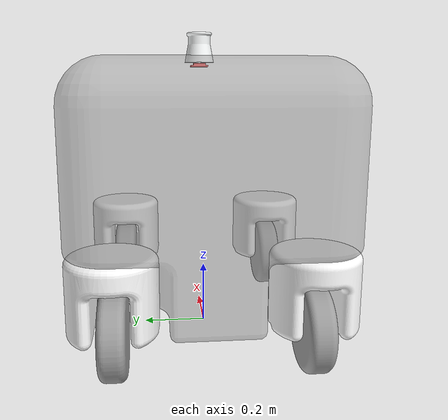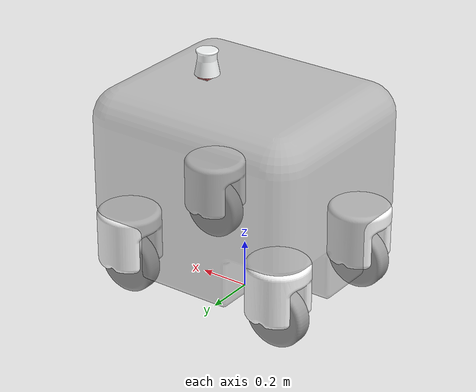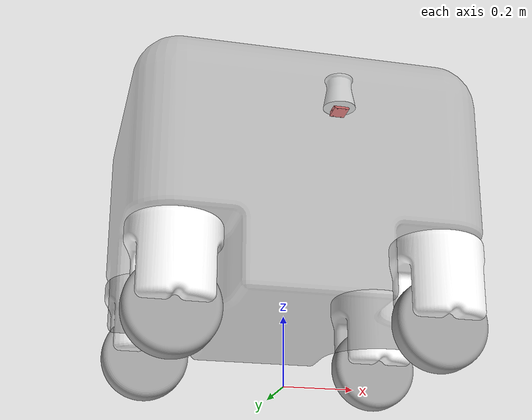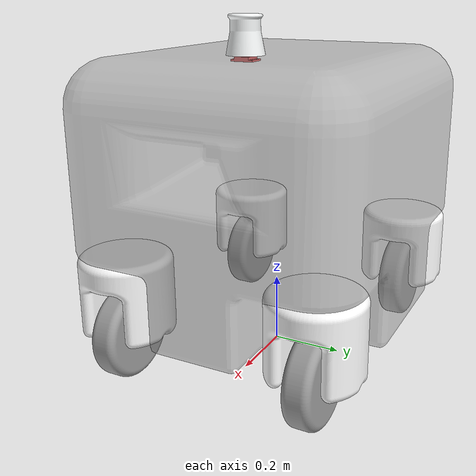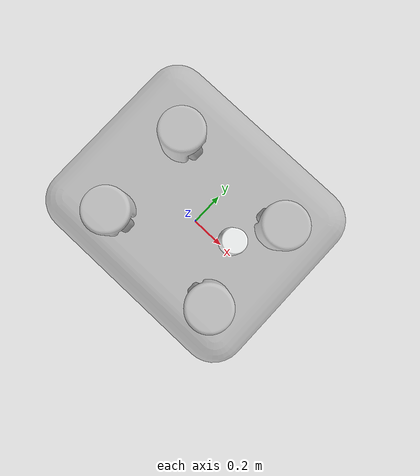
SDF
<sdf version="1.11">
  <model name="schoolbus">
    <link name="base_link">
      <inertial>
        <pose>-0.0030991999999999999 -3.8153999999999999e-08 0.53654000000000002 0 0 0</pose>
        <mass>486.55000000000001</mass>
        <inertia>
          <ixx>43.054000000000002</ixx>
          <ixy>8.2786999999999992e-06</ixy>
          <ixz>0.15619</ixz>
          <iyy>51.598999999999997</iyy>
          <iyz>1.8423999999999999e-06</iyz>
          <izz>57.113999999999997</izz>
        </inertia>
      </inertial>
      <collision name="base_link_collision">
        <pose>0 0 0 0 0 0</pose>
        <geometry>
          <mesh>
            <scale>1 1 1</scale>
            <uri>package://schoolbus_description/meshes/visual/base_link.STL</uri>
          </mesh>
        </geometry>
      </collision>
      <visual name="base_link_visual">
        <pose>0 0 0 0 0 0</pose>
        <geometry>
          <mesh>
            <scale>1 1 1</scale>
            <uri>package://schoolbus_description/meshes/visual/base_link.STL</uri>
          </mesh>
        </geometry>
        <material>
          <diffuse>0.627449989 0.627449989 0.627449989 0.5</diffuse>
          <ambient>0.627449989 0.627449989 0.627449989 0.5</ambient>
        </material>
      </visual>
    </link>
    <joint name="3d_lidar" type="fixed">
      <pose relative_to="base_link">0.17780000000000001 0 0.94942000000000004 0 0 0</pose>
      <parent>base_link</parent>
      <child>3d_lidar_link</child>
      <axis>
        <xyz>0 0 1</xyz>
        <limit>
          <lower>-inf</lower>
          <upper>inf</upper>
        </limit>
        <dynamics>
          <spring_reference>0</spring_reference>
          <spring_stiffness>0</spring_stiffness>
        </dynamics>
      </axis>
    </joint>
    <link name="3d_lidar_link">
      <pose relative_to="3d_lidar">0 0 0 0 0 0</pose>
      <inertial>
        <pose>0 3.9269999999999998e-35 -0.026988000000000002 0 0 0</pose>
        <mass>0.57150000000000001</mass>
        <inertia>
          <ixx>0.00077567000000000001</ixx>
          <ixy>-1.535e-36</ixy>
          <ixz>4.9776000000000003e-20</ixz>
          <iyy>0.00077567000000000001</iyy>
          <iyz>-9.8455999999999993e-37</iyz>
          <izz>0.00053483999999999997</izz>
        </inertia>
      </inertial>
      <collision name="3d_lidar_link_collision">
        <pose>0 0 0 0 0 0</pose>
        <geometry>
          <mesh>
            <scale>1 1 1</scale>
            <uri>package://schoolbus_description/meshes/visual/3d_lidar_link.STL</uri>
          </mesh>
        </geometry>
      </collision>
      <visual name="3d_lidar_link_visual">
        <pose>0 0 0 0 0 0</pose>
        <geometry>
          <mesh>
            <scale>1 1 1</scale>
            <uri>package://schoolbus_description/meshes/visual/3d_lidar_link.STL</uri>
          </mesh>
        </geometry>
        <material>
          <diffuse>0.990199983 1 1 1</diffuse>
          <ambient>0.990199983 1 1 1</ambient>
        </material>
      </visual>
    </link>
    <joint name="bl_steering" type="revolute">
      <pose relative_to="base_link">-0.35560000000000003 0.27939999999999998 0.35560000000000003 0 0 0</pose>
      <parent>base_link</parent>
      <child>bl_steering_link</child>
      <axis>
        <xyz>0 0 -1</xyz>
        <limit>
          <lower>-1.5708</lower>
          <upper>1.5708</upper>
          <effort>6</effort>
          <velocity>1.5</velocity>
        </limit>
        <dynamics>
          <damping>0.10000000000000001</damping>
          <friction>1</friction>
          <spring_reference>0</spring_reference>
          <spring_stiffness>0</spring_stiffness>
        </dynamics>
      </axis>
    </joint>
    <link name="bl_steering_link">
      <pose relative_to="bl_steering">0 0 0 0 0 0</pose>
      <inertial>
        <pose>-7.9133999999999999e-08 -1.3958999999999999e-07 -0.092578999999999995 0 0 0</pose>
        <mass>7.3875999999999999</mass>
        <inertia>
          <ixx>0.072414999999999993</ixx>
          <ixy>-9.3088000000000003e-07</ixy>
          <ixz>-2.1935999999999999e-08</ixz>
          <iyy>0.055257000000000001</iyy>
          <iyz>-6.4072999999999994e-08</iyz>
          <izz>0.065565999999999999</izz>
        </inertia>
      </inertial>
      <collision name="bl_steering_link_collision">
        <pose>0 0 0 0 0 0</pose>
        <geometry>
          <mesh>
            <scale>1 1 1</scale>
            <uri>package://schoolbus_description/meshes/visual/bl_steering_link.STL</uri>
          </mesh>
        </geometry>
      </collision>
      <visual name="bl_steering_link_visual">
        <pose>0 0 0 0 0 0</pose>
        <geometry>
          <mesh>
            <scale>1 1 1</scale>
            <uri>package://schoolbus_description/meshes/visual/bl_steering_link.STL</uri>
          </mesh>
        </geometry>
        <material>
          <diffuse>1 1 1 1</diffuse>
          <ambient>1 1 1 1</ambient>
        </material>
      </visual>
    </link>
    <joint name="bl_wheel" type="revolute">
      <pose relative_to="bl_steering_link">0 0 -0.2286 -1.5708 0 0</pose>
      <parent>bl_steering_link</parent>
      <child>bl_wheel_link</child>
      <axis>
        <xyz>0 0 1</xyz>
        <limit>
          <effort>14</effort>
          <velocity>35</velocity>
          <lower>-inf</lower>
          <upper>inf</upper>
        </limit>
        <dynamics>
          <damping>0.10000000000000001</damping>
          <friction>1</friction>
          <spring_reference>0</spring_reference>
          <spring_stiffness>0</spring_stiffness>
        </dynamics>
      </axis>
    </joint>
    <link name="bl_wheel_link">
      <pose relative_to="bl_wheel">0 0 0 0 0 0</pose>
      <inertial>
        <pose>0 0 0 0 0 0</pose>
        <mass>3.7288999999999999</mass>
        <inertia>
          <ixx>0.016291</ixx>
          <ixy>7.1943000000000005e-35</ixy>
          <ixz>8.2897e-35</ixz>
          <iyy>0.016291</iyy>
          <iyz>-1.6705e-49</iyz>
          <izz>0.029148</izz>
        </inertia>
      </inertial>
      <collision name="bl_wheel_link_collision">
        <pose>0 0 0 0 0 0</pose>
        <geometry>
          <mesh>
            <scale>1 1 1</scale>
            <uri>package://schoolbus_description/meshes/visual/bl_wheel_link.STL</uri>
          </mesh>
        </geometry>
      </collision>
      <visual name="bl_wheel_link_visual">
        <pose>0 0 0 0 0 0</pose>
        <geometry>
          <mesh>
            <scale>1 1 1</scale>
            <uri>package://schoolbus_description/meshes/visual/bl_wheel_link.STL</uri>
          </mesh>
        </geometry>
        <material>
          <diffuse>0.627449989 0.627449989 0.627449989 1</diffuse>
          <ambient>0.627449989 0.627449989 0.627449989 1</ambient>
        </material>
      </visual>
    </link>
    <joint name="br_steering" type="revolute">
      <pose relative_to="base_link">-0.35560000000000003 -0.27939999999999998 0.35560000000000003 0 0 0</pose>
      <parent>base_link</parent>
      <child>br_steering_link</child>
      <axis>
        <xyz>0 0 -1</xyz>
        <limit>
          <lower>-1.5708</lower>
          <upper>1.5708</upper>
          <effort>6</effort>
          <velocity>1.5</velocity>
        </limit>
        <dynamics>
          <damping>0.10000000000000001</damping>
          <friction>1</friction>
          <spring_reference>0</spring_reference>
          <spring_stiffness>0</spring_stiffness>
        </dynamics>
      </axis>
    </joint>
    <link name="br_steering_link">
      <pose relative_to="br_steering">0 0 0 0 0 0</pose>
      <inertial>
        <pose>-7.9133999999999999e-08 -1.3958999999999999e-07 -0.092578999999999995 0 0 0</pose>
        <mass>7.3875999999999999</mass>
        <inertia>
          <ixx>0.072414999999999993</ixx>
          <ixy>-9.3088000000000003e-07</ixy>
          <ixz>-2.1935999999999999e-08</ixz>
          <iyy>0.055257000000000001</iyy>
          <iyz>-6.4072999999999994e-08</iyz>
          <izz>0.065565999999999999</izz>
        </inertia>
      </inertial>
      <collision name="br_steering_link_collision">
        <pose>0 0 0 0 0 0</pose>
        <geometry>
          <mesh>
            <scale>1 1 1</scale>
            <uri>package://schoolbus_description/meshes/visual/br_steering_link.STL</uri>
          </mesh>
        </geometry>
      </collision>
      <visual name="br_steering_link_visual">
        <pose>0 0 0 0 0 0</pose>
        <geometry>
          <mesh>
            <scale>1 1 1</scale>
            <uri>package://schoolbus_description/meshes/visual/br_steering_link.STL</uri>
          </mesh>
        </geometry>
        <material>
          <diffuse>1 1 1 1</diffuse>
          <ambient>1 1 1 1</ambient>
        </material>
      </visual>
    </link>
    <joint name="br_wheel" type="revolute">
      <pose relative_to="br_steering_link">0 0 -0.2286 -1.5708 0 0</pose>
      <parent>br_steering_link</parent>
      <child>br_wheel_link</child>
      <axis>
        <xyz>0 0 1</xyz>
        <limit>
          <effort>14</effort>
          <velocity>35</velocity>
          <lower>-inf</lower>
          <upper>inf</upper>
        </limit>
        <dynamics>
          <damping>0.10000000000000001</damping>
          <friction>1</friction>
          <spring_reference>0</spring_reference>
          <spring_stiffness>0</spring_stiffness>
        </dynamics>
      </axis>
    </joint>
    <link name="br_wheel_link">
      <pose relative_to="br_wheel">0 0 0 0 0 0</pose>
      <inertial>
        <pose>0 0 0 0 0 0</pose>
        <mass>3.7288999999999999</mass>
        <inertia>
          <ixx>0.016291</ixx>
          <ixy>7.1943000000000005e-35</ixy>
          <ixz>-1.4635999999999999e-34</ixz>
          <iyy>0.016291</iyy>
          <iyz>-1.8808e-34</iyz>
          <izz>0.029148</izz>
        </inertia>
      </inertial>
      <collision name="br_wheel_link_collision">
        <pose>0 0 0 0 0 0</pose>
        <geometry>
          <mesh>
            <scale>1 1 1</scale>
            <uri>package://schoolbus_description/meshes/visual/br_wheel_link.STL</uri>
          </mesh>
        </geometry>
      </collision>
      <visual name="br_wheel_link_visual">
        <pose>0 0 0 0 0 0</pose>
        <geometry>
          <mesh>
            <scale>1 1 1</scale>
            <uri>package://schoolbus_description/meshes/visual/br_wheel_link.STL</uri>
          </mesh>
        </geometry>
        <material>
          <diffuse>0.627449989 0.627449989 0.627449989 1</diffuse>
          <ambient>0.627449989 0.627449989 0.627449989 1</ambient>
        </material>
      </visual>
    </link>
    <joint name="fl_steering" type="revolute">
      <pose relative_to="base_link">0.35560000000000003 0.27939999999999998 0.35560000000000003 0 0 0</pose>
      <parent>base_link</parent>
      <child>fl_steering_link</child>
      <axis>
        <xyz>0 0 -1</xyz>
        <limit>
          <lower>-1.5708</lower>
          <upper>1.5708</upper>
          <effort>6</effort>
          <velocity>1.5</velocity>
        </limit>
        <dynamics>
          <damping>0.10000000000000001</damping>
          <friction>1</friction>
          <spring_reference>0</spring_reference>
          <spring_stiffness>0</spring_stiffness>
        </dynamics>
      </axis>
    </joint>
    <link name="fl_steering_link">
      <pose relative_to="fl_steering">0 0 0 0 0 0</pose>
      <inertial>
        <pose>7.9133999999999999e-08 1.3958999999999999e-07 -0.092578999999999995 0 0 0</pose>
        <mass>7.3875999999999999</mass>
        <inertia>
          <ixx>0.072414999999999993</ixx>
          <ixy>-9.3088000000000003e-07</ixy>
          <ixz>2.1935999999999999e-08</ixz>
          <iyy>0.055257000000000001</iyy>
          <iyz>6.4072999999999994e-08</iyz>
          <izz>0.065565999999999999</izz>
        </inertia>
      </inertial>
      <collision name="fl_steering_link_collision">
        <pose>0 0 0 0 0 0</pose>
        <geometry>
          <mesh>
            <scale>1 1 1</scale>
            <uri>package://schoolbus_description/meshes/visual/fl_steering_link.STL</uri>
          </mesh>
        </geometry>
      </collision>
      <visual name="fl_steering_link_visual">
        <pose>0 0 0 0 0 0</pose>
        <geometry>
          <mesh>
            <scale>1 1 1</scale>
            <uri>package://schoolbus_description/meshes/visual/fl_steering_link.STL</uri>
          </mesh>
        </geometry>
        <material>
          <diffuse>1 1 1 1</diffuse>
          <ambient>1 1 1 1</ambient>
        </material>
      </visual>
    </link>
    <joint name="fl_wheel" type="revolute">
      <pose relative_to="fl_steering_link">0 0 -0.2286 -1.5708 0 0</pose>
      <parent>fl_steering_link</parent>
      <child>fl_wheel_link</child>
      <axis>
        <xyz>0 0 1</xyz>
        <limit>
          <effort>14</effort>
          <velocity>35</velocity>
          <lower>-inf</lower>
          <upper>inf</upper>
        </limit>
        <dynamics>
          <damping>0.10000000000000001</damping>
          <friction>1</friction>
          <spring_reference>0</spring_reference>
          <spring_stiffness>0</spring_stiffness>
        </dynamics>
      </axis>
    </joint>
    <link name="fl_wheel_link">
      <pose relative_to="fl_wheel">0 0 0 0 0 0</pose>
      <inertial>
        <pose>0 0 0 0 0 0</pose>
        <mass>3.7288999999999999</mass>
        <inertia>
          <ixx>0.016291</ixx>
          <ixy>1.8197e-34</ixy>
          <ixz>-2.5277000000000001e-35</ixz>
          <iyy>0.016291</iyy>
          <iyz>-9.4039999999999999e-35</iyz>
          <izz>0.029148</izz>
        </inertia>
      </inertial>
      <collision name="fl_wheel_link_collision">
        <pose>0 0 0 0 0 0</pose>
        <geometry>
          <mesh>
            <scale>1 1 1</scale>
            <uri>package://schoolbus_description/meshes/visual/fl_wheel_link.STL</uri>
          </mesh>
        </geometry>
      </collision>
      <visual name="fl_wheel_link_visual">
        <pose>0 0 0 0 0 0</pose>
        <geometry>
          <mesh>
            <scale>1 1 1</scale>
            <uri>package://schoolbus_description/meshes/visual/fl_wheel_link.STL</uri>
          </mesh>
        </geometry>
        <material>
          <diffuse>0.627449989 0.627449989 0.627449989 1</diffuse>
          <ambient>0.627449989 0.627449989 0.627449989 1</ambient>
        </material>
      </visual>
    </link>
    <joint name="fr_steering" type="revolute">
      <pose relative_to="base_link">0.35560000000000003 -0.27939999999999998 0.35560000000000003 0 0 0</pose>
      <parent>base_link</parent>
      <child>fr_steering_link</child>
      <axis>
        <xyz>0 0 -1</xyz>
        <limit>
          <lower>-1.5708</lower>
          <upper>1.5708</upper>
          <effort>6</effort>
          <velocity>1.5</velocity>
        </limit>
        <dynamics>
          <damping>0.10000000000000001</damping>
          <friction>1</friction>
          <spring_reference>0</spring_reference>
          <spring_stiffness>0</spring_stiffness>
        </dynamics>
      </axis>
    </joint>
    <link name="fr_steering_link">
      <pose relative_to="fr_steering">0 0 0 0 0 0</pose>
      <inertial>
        <pose>-7.9133999999999999e-08 -1.3958999999999999e-07 -0.092578999999999995 0 0 0</pose>
        <mass>7.3875999999999999</mass>
        <inertia>
          <ixx>0.072414999999999993</ixx>
          <ixy>-9.3088000000000003e-07</ixy>
          <ixz>-2.1935999999999999e-08</ixz>
          <iyy>0.055257000000000001</iyy>
          <iyz>-6.4072999999999994e-08</iyz>
          <izz>0.065565999999999999</izz>
        </inertia>
      </inertial>
      <collision name="fr_steering_link_collision">
        <pose>0 0 0 0 0 0</pose>
        <geometry>
          <mesh>
            <scale>1 1 1</scale>
            <uri>package://schoolbus_description/meshes/visual/fr_steering_link.STL</uri>
          </mesh>
        </geometry>
      </collision>
      <visual name="fr_steering_link_visual">
        <pose>0 0 0 0 0 0</pose>
        <geometry>
          <mesh>
            <scale>1 1 1</scale>
            <uri>package://schoolbus_description/meshes/visual/fr_steering_link.STL</uri>
          </mesh>
        </geometry>
        <material>
          <diffuse>1 1 1 1</diffuse>
          <ambient>1 1 1 1</ambient>
        </material>
      </visual>
    </link>
    <joint name="fr_wheel" type="revolute">
      <pose relative_to="fr_steering_link">0 0 -0.2286 -1.5708 0 0</pose>
      <parent>fr_steering_link</parent>
      <child>fr_wheel_link</child>
      <axis>
        <xyz>0 0 1</xyz>
        <limit>
          <effort>14</effort>
          <velocity>35</velocity>
          <lower>-inf</lower>
          <upper>inf</upper>
        </limit>
        <dynamics>
          <damping>0.10000000000000001</damping>
          <friction>1</friction>
          <spring_reference>0</spring_reference>
          <spring_stiffness>0</spring_stiffness>
        </dynamics>
      </axis>
    </joint>
    <link name="fr_wheel_link">
      <pose relative_to="fr_wheel">0 0 0 0 0 0</pose>
      <inertial>
        <pose>0 0 -5.5511e-17 0 0 0</pose>
        <mass>3.7288999999999999</mass>
        <inertia>
          <ixx>0.016291</ixx>
          <ixy>-2.7162000000000002e-34</ixy>
          <ixz>-1.3166e-18</ixz>
          <iyy>0.016291</iyy>
          <iyz>-9.4039999999999999e-35</iyz>
          <izz>0.029148</izz>
        </inertia>
      </inertial>
      <collision name="fr_wheel_link_collision">
        <pose>0 0 0 0 0 0</pose>
        <geometry>
          <mesh>
            <scale>1 1 1</scale>
            <uri>package://schoolbus_description/meshes/visual/fr_wheel_link.STL</uri>
          </mesh>
        </geometry>
      </collision>
      <visual name="fr_wheel_link_visual">
        <pose>0 0 0 0 0 0</pose>
        <geometry>
          <mesh>
            <scale>1 1 1</scale>
            <uri>package://schoolbus_description/meshes/visual/fr_wheel_link.STL</uri>
          </mesh>
        </geometry>
        <material>
          <diffuse>0.627449989 0.627449989 0.627449989 1</diffuse>
          <ambient>0.627449989 0.627449989 0.627449989 1</ambient>
        </material>
      </visual>
    </link>
    <joint name="imu" type="fixed">
      <pose relative_to="base_link">0.17780000000000001 0 0.86121999999999999 0 0 0</pose>
      <parent>base_link</parent>
      <child>imu_link</child>
      <axis>
        <xyz>0 0 1</xyz>
        <limit>
          <lower>-inf</lower>
          <upper>inf</upper>
        </limit>
        <dynamics>
          <spring_reference>0</spring_reference>
          <spring_stiffness>0</spring_stiffness>
        </dynamics>
      </axis>
    </joint>
    <link name="imu_link">
      <pose relative_to="imu">0 0 0 0 0 0</pose>
      <inertial>
        <pose>0.00010294 -7.2841000000000002e-21 0.0054089000000000003 0 0 0</pose>
        <mass>0.026398999999999999</mass>
        <inertia>
          <ixx>6.0877000000000002e-06</ixx>
          <ixy>1.4557000000000001e-22</ixy>
          <ixz>-1.6064e-09</ixz>
          <iyy>4.9463000000000004e-06</iyy>
          <iyz>2.7815000000000002e-22</iyz>
          <izz>1.0395e-05</izz>
        </inertia>
      </inertial>
      <collision name="imu_link_collision">
        <pose>0 0 0 0 0 0</pose>
        <geometry>
          <mesh>
            <scale>1 1 1</scale>
            <uri>package://schoolbus_description/meshes/visual/imu_link.STL</uri>
          </mesh>
        </geometry>
      </collision>
      <visual name="imu_link_visual">
        <pose>0 0 0 0 0 0</pose>
        <geometry>
          <mesh>
            <scale>1 1 1</scale>
            <uri>package://schoolbus_description/meshes/visual/imu_link.STL</uri>
          </mesh>
        </geometry>
        <material>
          <diffuse>1 0.210787505 0.210787505 1</diffuse>
          <ambient>1 0.210787505 0.210787505 1</ambient>
        </material>
      </visual>
    </link>
  </model>
</sdf>
